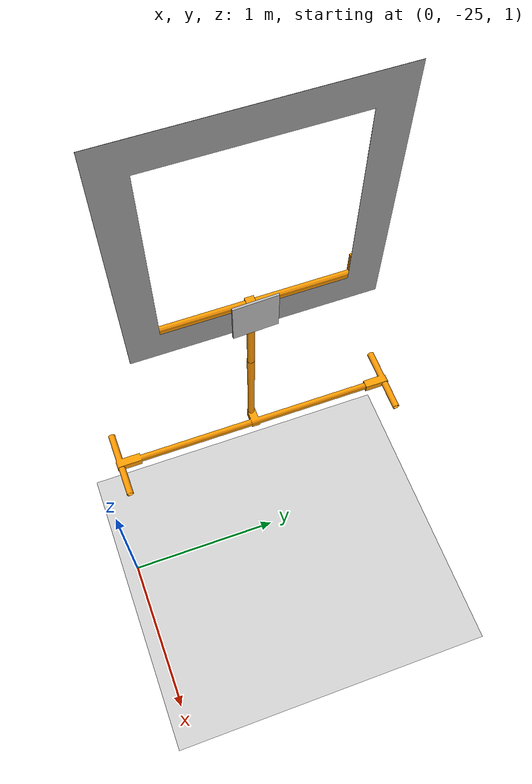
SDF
<sdf version="1.7">
 <world name="default">
  <model name="ground_plane">
   <static>1</static>
   <link name="link">
    <collision name="collision">
     <geometry><plane><normal>0 0 1</normal><size>100 100</size></plane></geometry>
     <surface>
      <contact><collide_bitmask>65535</collide_bitmask></contact>
      <friction><ode><mu>100</mu><mu2>50</mu2></ode></friction>
     </surface>
    </collision>
    <visual name="visual">
     <cast_shadows>0</cast_shadows>
     <geometry><plane><normal>0 0 1</normal><size>100 100</size></plane></geometry>
     <material>
      <script><uri>file://media/materials/scripts/gazebo.material</uri><name>Gazebo/Grey</name></script>
     </material>
    </visual>
   </link>
  </model>
  <model name="Aruco_gate_3">
   <link name="aruco">
    <pose>0.135 0 1.45017 0 -0 1.6</pose>
    <collision name="collision"><geometry><box><size>0.3 0.015 0.3</size></box></geometry></collision>
    <visual name="visual">
     <pose>0 0 0 0 1.57 0</pose>
     <geometry><box><size>0.3 0.015 0.3</size></box></geometry>
     <material>
      <script>
       <uri>model://aruco/materials/scripts</uri>
       <uri>model://aruco/materials/textures</uri>
       <name>aruco_3/Diffuse</name>
      </script>
     </material>
    </visual>
   </link>
   <link name="link_0">
    <pose>-0.126667 1.11221 0.000173 1.57 -0 0</pose>
    <inertial>
     <mass>1</mass>
     <inertia>
      <ixx>0.166667</ixx>
      <ixy>0</ixy>
      <ixz>0</ixz>
      <iyy>0.166667</iyy>
      <iyz>0</iyz>
      <izz>0.166667</izz>
     </inertia>
    </inertial>
    <visual name="visual">
     <geometry><mesh><uri>model://aruco_gate_1/meshes/base.stl</uri><scale>1 1 1</scale></mesh></geometry>
     <material>
      <lighting>1</lighting>
      <script><uri>file://media/materials/scripts/gazebo.material</uri><name>Gazebo/Grey</name></script>
      <ambient>1 0.6 0 1</ambient>
      <diffuse>1 0.6 0 1</diffuse>
      <specular>0.01 0.01 0.01 1</specular>
      <emissive>0 0 0 1</emissive>
      <shader type="vertex"><normal_map>__default__</normal_map></shader>
     </material>
    </visual>
    <collision name="collision">
     <geometry><mesh><uri>model://aruco_gate_1/meshes/base.stl</uri></mesh></geometry>
     <surface>
      <friction>
       <ode><mu>1</mu><mu2>1</mu2><fdir1>0 0 0</fdir1><slip1>0</slip1><slip2>0</slip2></ode>
       <torsional>
        <coefficient>1</coefficient>
        <patch_radius>0</patch_radius>
        <surface_radius>0</surface_radius>
        <use_patch_radius>1</use_patch_radius>
        <ode><slip>0</slip></ode>
       </torsional>
      </friction>
      <bounce><restitution_coefficient>0</restitution_coefficient><threshold>1e+06</threshold></bounce>
      <contact>
       <collide_without_contact>0</collide_without_contact>
       <collide_without_contact_bitmask>1</collide_without_contact_bitmask>
       <collide_bitmask>1</collide_bitmask>
       <ode>
        <soft_cfm>0</soft_cfm>
        <soft_erp>0.2</soft_erp>
        <kp>1e+13</kp>
        <kd>1</kd>
        <max_vel>0.01</max_vel>
        <min_depth>0</min_depth>
       </ode>
       <bullet>
        <split_impulse>1</split_impulse>
        <split_impulse_penetration_threshold>-0.01</split_impulse_penetration_threshold>
        <soft_cfm>0</soft_cfm>
        <soft_erp>0.2</soft_erp>
        <kp>1e+13</kp>
        <kd>1</kd>
       </bullet>
      </contact>
     </surface>
    </collision>
   </link>
   <link name="link_1">
    <pose>0.003333 -0.7 1.40017 0 -0 0</pose>
    <inertial>
     <mass>1</mass>
     <inertia>
      <ixx>0.166667</ixx>
      <ixy>0</ixy>
      <ixz>0</ixz>
      <iyy>0.166667</iyy>
      <iyz>0</iyz>
      <izz>0.166667</izz>
     </inertia>
    </inertial>
    <visual name="visual">
     <geometry><mesh><uri>model://aruco_gate_1/meshes/hoop.stl</uri><scale>1 1 1</scale></mesh></geometry>
     <material>
      <lighting>1</lighting>
      <script><uri>file://media/materials/scripts/gazebo.material</uri><name>Gazebo/Grey</name></script>
      <ambient>1 0.6 0 1</ambient>
      <diffuse>1 0.6 0 1</diffuse>
      <specular>0.01 0.01 0.01 1</specular>
      <emissive>0 0 0 1</emissive>
      <shader type="vertex"><normal_map>__default__</normal_map></shader>
     </material>
    </visual>
    <collision name="collision">
     <geometry><mesh><uri>model://aruco_gate_1/meshes/hoop.stl</uri></mesh></geometry>
     <surface>
      <friction>
       <ode><mu>1</mu><mu2>1</mu2><fdir1>0 0 0</fdir1><slip1>0</slip1><slip2>0</slip2></ode>
       <torsional>
        <coefficient>1</coefficient>
        <patch_radius>0</patch_radius>
        <surface_radius>0</surface_radius>
        <use_patch_radius>1</use_patch_radius>
        <ode><slip>0</slip></ode>
       </torsional>
      </friction>
      <bounce><restitution_coefficient>0</restitution_coefficient><threshold>1e+06</threshold></bounce>
      <contact>
       <collide_without_contact>0</collide_without_contact>
       <collide_without_contact_bitmask>1</collide_without_contact_bitmask>
       <collide_bitmask>1</collide_bitmask>
       <ode>
        <soft_cfm>0</soft_cfm>
        <soft_erp>0.2</soft_erp>
        <kp>1e+13</kp>
        <kd>1</kd>
        <max_vel>0.01</max_vel>
        <min_depth>0</min_depth>
       </ode>
       <bullet>
        <split_impulse>1</split_impulse>
        <split_impulse_penetration_threshold>-0.01</split_impulse_penetration_threshold>
        <soft_cfm>0</soft_cfm>
        <soft_erp>0.2</soft_erp>
        <kp>1e+13</kp>
        <kd>1</kd>
       </bullet>
      </contact>
     </surface>
    </collision>
   </link>
   <link name="link_2">
    <pose>0.123333 -0.797794 3.62017 0 1.57 0</pose>
    <inertial>
     <mass>1</mass>
     <inertia>
      <ixx>0.166667</ixx>
      <ixy>0</ixy>
      <ixz>0</ixz>
      <iyy>0.166667</iyy>
      <iyz>0</iyz>
      <izz>0.166667</izz>
     </inertia>
    </inertial>
    <visual name="visual">
     <geometry><mesh><uri>model://aruco_gate_1/meshes/background.stl</uri><scale>1 1 1</scale></mesh></geometry>
     <material>
      <lighting>1</lighting>
      <script><uri>file://media/materials/scripts/gazebo.material</uri><name>Gazebo/Grey</name></script>
      <ambient>0.9 0.9 0.9 1</ambient>
      <diffuse>0.9 0.9 0.9 1</diffuse>
      <specular>0.01 0.01 0.01 1</specular>
      <emissive>0 0 0 1</emissive>
      <shader type="vertex"><normal_map>__default__</normal_map></shader>
     </material>
    </visual>
    <collision name="collision">
     <geometry><mesh><uri>model://aruco_gate_1/meshes/background.stl</uri></mesh></geometry>
     <surface>
      <friction>
       <ode><mu>1</mu><mu2>1</mu2><fdir1>0 0 0</fdir1><slip1>0</slip1><slip2>0</slip2></ode>
       <torsional>
        <coefficient>1</coefficient>
        <patch_radius>0</patch_radius>
        <surface_radius>0</surface_radius>
        <use_patch_radius>1</use_patch_radius>
        <ode><slip>0</slip></ode>
       </torsional>
      </friction>
      <bounce><restitution_coefficient>0</restitution_coefficient><threshold>1e+06</threshold></bounce>
      <contact>
       <collide_without_contact>0</collide_without_contact>
       <collide_without_contact_bitmask>1</collide_without_contact_bitmask>
       <collide_bitmask>1</collide_bitmask>
       <ode>
        <soft_cfm>0</soft_cfm>
        <soft_erp>0.2</soft_erp>
        <kp>1e+13</kp>
        <kd>1</kd>
        <max_vel>0.01</max_vel>
        <min_depth>0</min_depth>
       </ode>
       <bullet>
        <split_impulse>1</split_impulse>
        <split_impulse_penetration_threshold>-0.01</split_impulse_penetration_threshold>
        <soft_cfm>0</soft_cfm>
        <soft_erp>0.2</soft_erp>
        <kp>1e+13</kp>
        <kd>1</kd>
       </bullet>
      </contact>
     </surface>
    </collision>
   </link>
   <static>1</static>
   <plugin name="gazebo_random_position_plugin" filename="librotors_gazebo_random_position_plugin.so">
    <limitX>0.75</limitX>
    <limitY>0.75</limitY>
    <limitZ>0.5</limitZ>
    <activate_roll>0</activate_roll>
   </plugin>
   <pose>-0.91627 -23.8353 1 0 -0 0</pose>
  </model>
 </world>
</sdf>
